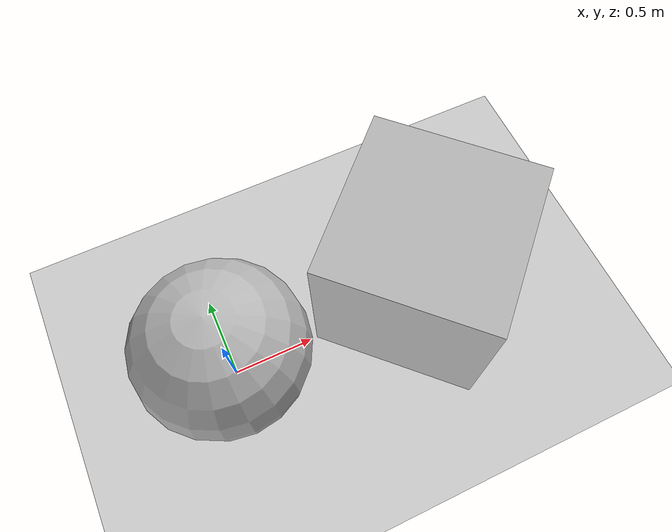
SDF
<?xml version="1.0" ?>
<sdf version="1.7">
  <world name="nested_model_world">
    <physics name="1ms" type="ignored">
      <max_step_size>0.001</max_step_size>
      <real_time_factor>1.0</real_time_factor>
    </physics>
    <plugin
      filename="gz-sim-physics-system"
      name="gz::sim::systems::Physics">
    </plugin>
    <plugin
      filename="gz-sim-user-commands-system"
      name="gz::sim::systems::UserCommands">
    </plugin>
    <plugin
      filename="gz-sim-scene-broadcaster-system"
      name="gz::sim::systems::SceneBroadcaster">
    </plugin>

    <scene>
      <ambient>1.0 1.0 1.0</ambient>
      <background>0.8 0.8 0.8</background>
    </scene>

    <light type="directional" name="sun">
      <cast_shadows>true</cast_shadows>
      <pose>0 0 10 0 0 0</pose>
      <diffuse>0.8 0.8 0.8 1</diffuse>
      <specular>0.8 0.8 0.8 1</specular>
      <attenuation>
        <range>1000</range>
        <constant>0.9</constant>
        <linear>0.01</linear>
        <quadratic>0.001</quadratic>
      </attenuation>
      <direction>-0.5 0.1 -0.9</direction>
    </light>

    <model name="ground_plane">
      <static>true</static>
      <link name="link">
        <collision name="collision">
          <geometry>
            <plane>
              <normal>0 0 1</normal>
              <size>100 100</size>
            </plane>
          </geometry>
        </collision>
        <visual name="visual">
          <geometry>
            <plane>
              <normal>0 0 1</normal>
              <size>100 100</size>
            </plane>
          </geometry>
          <material>
            <ambient>0.8 0.8 0.8 1</ambient>
            <diffuse>0.8 0.8 0.8 1</diffuse>
            <specular>0.8 0.8 0.8 1</specular>
          </material>
        </visual>
      </link>
    </model>

    <model name="model_00">
      <pose>0 0 0.5 0 0 0</pose>
      <link name="link_00">
        <pose>0 0 0 0 0 0</pose>
        <collision name="collision_00">
          <geometry>
            <sphere>
              <radius>0.5</radius>
            </sphere>
          </geometry>
        </collision>
        <visual name="visual_00">
          <geometry>
            <sphere>
              <radius>0.5</radius>
            </sphere>
          </geometry>
        </visual>
      </link>

      <model name="model_01">
        <pose>1 0 0.0 0 0 0</pose>
        <link name="link_01">
          <pose>0.25 0 0.0 0 0 0.785398</pose>
          <collision name="collision_01">
            <geometry>
              <box>
                <size>1 1 1</size>
              </box>
            </geometry>
          </collision>
          <visual name="visual_01">
            <geometry>
              <box>
                <size>1 1 1</size>
              </box>
            </geometry>
          </visual>
        </link>
      </model>
    </model>

      <plugin
      filename="gz-sim-apply-link-wrench-system"
      name="gz::sim::systems::ApplyLinkWrench">
    </plugin>

</world>
</sdf>
